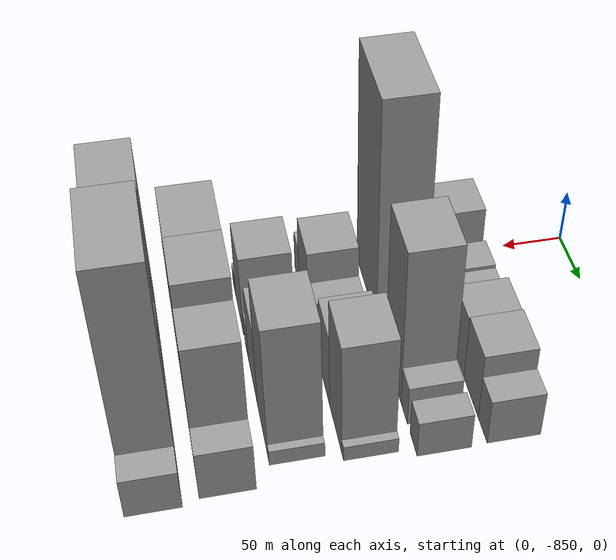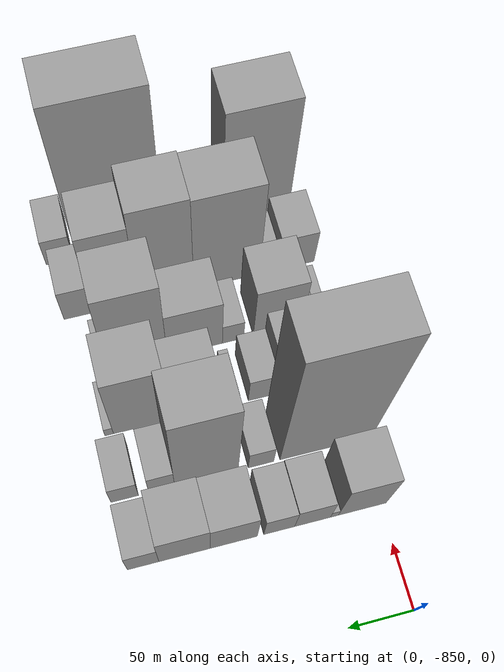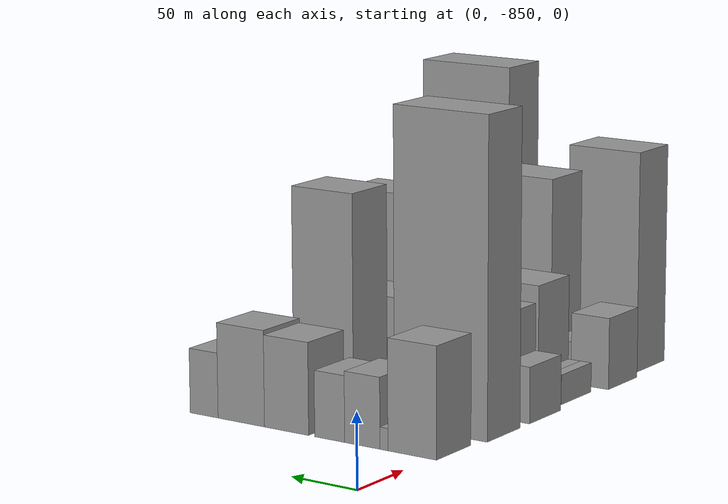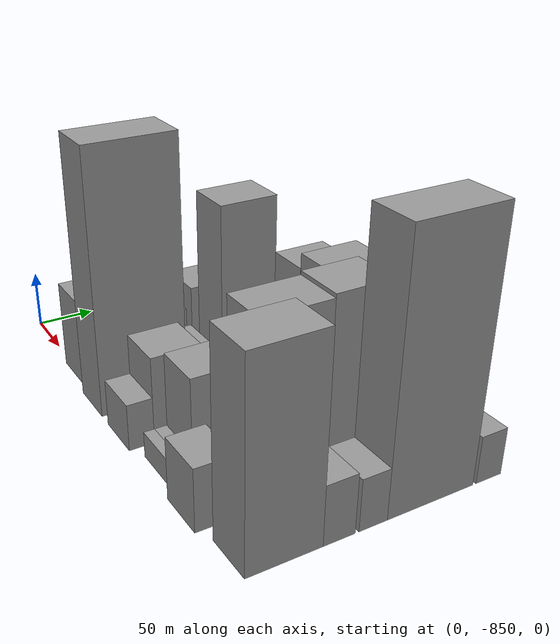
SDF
<sdf version="1.6">
 <world name="default">
  <model name="building_1">
   <static>1</static>
   <pose>100.0000 -836.1101 0 0.000000 0.000000 0.000000</pose>
   <link name="link">
    <pose>0 0 37.50 0 0 0</pose>
    <collision name="collision"><geometry><box><size>40.0000 37.7797 75.0000</size></box></geometry></collision>
    <visual name="visual">
     <cast_shadows>0</cast_shadows>
     <geometry><box><size>40.0000 37.7797 75.0000</size></box></geometry>
     <material>
      <script>
       <uri>model://grey_wall/materials/scripts</uri>
       <uri>model://grey_wall/materials/textures</uri>
       <name>vrc/grey_wall</name>
      </script>
     </material>
    </visual>
   </link>
  </model>
  <model name="building_2">
   <static>1</static>
   <pose>100.0000 -814.1010 0 0.000000 0.000000 0.000000</pose>
   <link name="link">
    <pose>0 0 7.50 0 0 0</pose>
    <collision name="collision"><geometry><box><size>40.0000 6.2386 15.0000</size></box></geometry></collision>
    <visual name="visual">
     <cast_shadows>0</cast_shadows>
     <geometry><box><size>40.0000 6.2386 15.0000</size></box></geometry>
     <material>
      <script>
       <uri>model://grey_wall/materials/scripts</uri>
       <uri>model://grey_wall/materials/textures</uri>
       <name>vrc/grey_wall</name>
      </script>
     </material>
    </visual>
   </link>
  </model>
  <model name="building_3">
   <static>1</static>
   <pose>100.0000 -797.0006 0 0.000000 0.000000 0.000000</pose>
   <link name="link">
    <pose>0 0 24.00 0 0 0</pose>
    <collision name="collision"><geometry><box><size>40.0000 27.9622 48.0000</size></box></geometry></collision>
    <visual name="visual">
     <cast_shadows>0</cast_shadows>
     <geometry><box><size>40.0000 27.9622 48.0000</size></box></geometry>
     <material>
      <script>
       <uri>model://grey_wall/materials/scripts</uri>
       <uri>model://grey_wall/materials/textures</uri>
       <name>vrc/grey_wall</name>
      </script>
     </material>
    </visual>
   </link>
  </model>
  <model name="building_4">
   <static>1</static>
   <pose>100.0000 -770.9976 0 0.000000 0.000000 0.000000</pose>
   <link name="link">
    <pose>0 0 22.50 0 0 0</pose>
    <collision name="collision"><geometry><box><size>40.0000 24.0437 45.0000</size></box></geometry></collision>
    <visual name="visual">
     <cast_shadows>0</cast_shadows>
     <geometry><box><size>40.0000 24.0437 45.0000</size></box></geometry>
     <material>
      <script>
       <uri>model://grey_wall/materials/scripts</uri>
       <uri>model://grey_wall/materials/textures</uri>
       <name>vrc/grey_wall</name>
      </script>
     </material>
    </visual>
   </link>
  </model>
  <model name="building_5">
   <static>1</static>
   <pose>100.0000 -735.8381 0 0.000000 0.000000 0.000000</pose>
   <link name="link">
    <pose>0 0 31.50 0 0 0</pose>
    <collision name="collision"><geometry><box><size>40.0000 36.2753 63.0000</size></box></geometry></collision>
    <visual name="visual">
     <cast_shadows>0</cast_shadows>
     <geometry><box><size>40.0000 36.2753 63.0000</size></box></geometry>
     <material>
      <script>
       <uri>model://grey_wall/materials/scripts</uri>
       <uri>model://grey_wall/materials/textures</uri>
       <name>vrc/grey_wall</name>
      </script>
     </material>
    </visual>
   </link>
  </model>
  <model name="building_6">
   <static>1</static>
   <pose>100.0000 -698.1796 0 0.000000 0.000000 0.000000</pose>
   <link name="link">
    <pose>0 0 33.00 0 0 0</pose>
    <collision name="collision"><geometry><box><size>40.0000 39.0418 66.0000</size></box></geometry></collision>
    <visual name="visual">
     <cast_shadows>0</cast_shadows>
     <geometry><box><size>40.0000 39.0418 66.0000</size></box></geometry>
     <material>
      <script>
       <uri>model://grey_wall/materials/scripts</uri>
       <uri>model://grey_wall/materials/textures</uri>
       <name>vrc/grey_wall</name>
      </script>
     </material>
    </visual>
   </link>
  </model>
  <model name="building_7">
   <static>1</static>
   <pose>100.0000 -666.7290 0 0.000000 0.000000 0.000000</pose>
   <link name="link">
    <pose>0 0 22.50 0 0 0</pose>
    <collision name="collision"><geometry><box><size>40.0000 23.8593 45.0000</size></box></geometry></collision>
    <visual name="visual">
     <cast_shadows>0</cast_shadows>
     <geometry><box><size>40.0000 23.8593 45.0000</size></box></geometry>
     <material>
      <script>
       <uri>model://grey_wall/materials/scripts</uri>
       <uri>model://grey_wall/materials/textures</uri>
       <name>vrc/grey_wall</name>
      </script>
     </material>
    </visual>
   </link>
  </model>
  <model name="building_50">
   <static>1</static>
   <pose>152.0000 -823.1625 0 0.000000 0.000000 0.000000</pose>
   <link name="link">
    <pose>0 0 108.00 0 0 0</pose>
    <collision name="collision"><geometry><box><size>40.0000 73.6750 216.0000</size></box></geometry></collision>
    <visual name="visual">
     <cast_shadows>0</cast_shadows>
     <geometry><box><size>40.0000 73.6750 216.0000</size></box></geometry>
     <material>
      <script>
       <uri>model://grey_wall/materials/scripts</uri>
       <uri>model://grey_wall/materials/textures</uri>
       <name>vrc/grey_wall</name>
      </script>
     </material>
    </visual>
   </link>
  </model>
  <model name="building_51">
   <static>1</static>
   <pose>152.0000 -771.1802 0 0.000000 0.000000 0.000000</pose>
   <link name="link">
    <pose>0 0 18.00 0 0 0</pose>
    <collision name="collision"><geometry><box><size>40.0000 20.2896 36.0000</size></box></geometry></collision>
    <visual name="visual">
     <cast_shadows>0</cast_shadows>
     <geometry><box><size>40.0000 20.2896 36.0000</size></box></geometry>
     <material>
      <script>
       <uri>model://grey_wall/materials/scripts</uri>
       <uri>model://grey_wall/materials/textures</uri>
       <name>vrc/grey_wall</name>
      </script>
     </material>
    </visual>
   </link>
  </model>
  <model name="building_52">
   <static>1</static>
   <pose>152.0000 -728.1280 0 0.000000 0.000000 0.000000</pose>
   <link name="link">
    <pose>0 0 76.50 0 0 0</pose>
    <collision name="collision"><geometry><box><size>40.0000 49.8148 153.0000</size></box></geometry></collision>
    <visual name="visual">
     <cast_shadows>0</cast_shadows>
     <geometry><box><size>40.0000 49.8148 153.0000</size></box></geometry>
     <material>
      <script>
       <uri>model://grey_wall/materials/scripts</uri>
       <uri>model://grey_wall/materials/textures</uri>
       <name>vrc/grey_wall</name>
      </script>
     </material>
    </visual>
   </link>
  </model>
  <model name="building_53">
   <static>1</static>
   <pose>152.0000 -693.1054 0 0.000000 0.000000 0.000000</pose>
   <link name="link">
    <pose>0 0 19.50 0 0 0</pose>
    <collision name="collision"><geometry><box><size>40.0000 20.2304 39.0000</size></box></geometry></collision>
    <visual name="visual">
     <cast_shadows>0</cast_shadows>
     <geometry><box><size>40.0000 20.2304 39.0000</size></box></geometry>
     <material>
      <script>
       <uri>model://grey_wall/materials/scripts</uri>
       <uri>model://grey_wall/materials/textures</uri>
       <name>vrc/grey_wall</name>
      </script>
     </material>
    </visual>
   </link>
  </model>
  <model name="building_54">
   <static>1</static>
   <pose>152.0000 -664.2839 0 0.000000 0.000000 0.000000</pose>
   <link name="link">
    <pose>0 0 18.00 0 0 0</pose>
    <collision name="collision"><geometry><box><size>40.0000 21.4125 36.0000</size></box></geometry></collision>
    <visual name="visual">
     <cast_shadows>0</cast_shadows>
     <geometry><box><size>40.0000 21.4125 36.0000</size></box></geometry>
     <material>
      <script>
       <uri>model://grey_wall/materials/scripts</uri>
       <uri>model://grey_wall/materials/textures</uri>
       <name>vrc/grey_wall</name>
      </script>
     </material>
    </visual>
   </link>
  </model>
  <model name="building_102">
   <static>1</static>
   <pose>204.0000 -849.7904 0 0.000000 0.000000 0.000000</pose>
   <link name="link">
    <pose>0 0 19.50 0 0 0</pose>
    <collision name="collision"><geometry><box><size>40.0000 20.4192 39.0000</size></box></geometry></collision>
    <visual name="visual">
     <cast_shadows>0</cast_shadows>
     <geometry><box><size>40.0000 20.4192 39.0000</size></box></geometry>
     <material>
      <script>
       <uri>model://grey_wall/materials/scripts</uri>
       <uri>model://grey_wall/materials/textures</uri>
       <name>vrc/grey_wall</name>
      </script>
     </material>
    </visual>
   </link>
  </model>
  <model name="building_103">
   <static>1</static>
   <pose>204.0000 -818.8654 0 0.000000 0.000000 0.000000</pose>
   <link name="link">
    <pose>0 0 36.00 0 0 0</pose>
    <collision name="collision"><geometry><box><size>40.0000 41.4309 72.0000</size></box></geometry></collision>
    <visual name="visual">
     <cast_shadows>0</cast_shadows>
     <geometry><box><size>40.0000 41.4309 72.0000</size></box></geometry>
     <material>
      <script>
       <uri>model://grey_wall/materials/scripts</uri>
       <uri>model://grey_wall/materials/textures</uri>
       <name>vrc/grey_wall</name>
      </script>
     </material>
    </visual>
   </link>
  </model>
  <model name="building_104">
   <static>1</static>
   <pose>204.0000 -786.6893 0 0.000000 0.000000 0.000000</pose>
   <link name="link">
    <pose>0 0 21.00 0 0 0</pose>
    <collision name="collision"><geometry><box><size>40.0000 22.9213 42.0000</size></box></geometry></collision>
    <visual name="visual">
     <cast_shadows>0</cast_shadows>
     <geometry><box><size>40.0000 22.9213 42.0000</size></box></geometry>
     <material>
      <script>
       <uri>model://grey_wall/materials/scripts</uri>
       <uri>model://grey_wall/materials/textures</uri>
       <name>vrc/grey_wall</name>
      </script>
     </material>
    </visual>
   </link>
  </model>
  <model name="building_105">
   <static>1</static>
   <pose>204.0000 -764.2685 0 0.000000 0.000000 0.000000</pose>
   <link name="link">
    <pose>0 0 9.00 0 0 0</pose>
    <collision name="collision"><geometry><box><size>40.0000 7.9204 18.0000</size></box></geometry></collision>
    <visual name="visual">
     <cast_shadows>0</cast_shadows>
     <geometry><box><size>40.0000 7.9204 18.0000</size></box></geometry>
     <material>
      <script>
       <uri>model://grey_wall/materials/scripts</uri>
       <uri>model://grey_wall/materials/textures</uri>
       <name>vrc/grey_wall</name>
      </script>
     </material>
    </visual>
   </link>
  </model>
  <model name="building_106">
   <static>1</static>
   <pose>204.0000 -731.7909 0 0.000000 0.000000 0.000000</pose>
   <link name="link">
    <pose>0 0 36.00 0 0 0</pose>
    <collision name="collision"><geometry><box><size>40.0000 41.0349 72.0000</size></box></geometry></collision>
    <visual name="visual">
     <cast_shadows>0</cast_shadows>
     <geometry><box><size>40.0000 41.0349 72.0000</size></box></geometry>
     <material>
      <script>
       <uri>model://grey_wall/materials/scripts</uri>
       <uri>model://grey_wall/materials/textures</uri>
       <name>vrc/grey_wall</name>
      </script>
     </material>
    </visual>
   </link>
  </model>
  <model name="building_107">
   <static>1</static>
   <pose>204.0000 -689.0931 0 0.000000 0.000000 0.000000</pose>
   <link name="link">
    <pose>0 0 55.50 0 0 0</pose>
    <collision name="collision"><geometry><box><size>40.0000 44.3606 111.0000</size></box></geometry></collision>
    <visual name="visual">
     <cast_shadows>0</cast_shadows>
     <geometry><box><size>40.0000 44.3606 111.0000</size></box></geometry>
     <material>
      <script>
       <uri>model://grey_wall/materials/scripts</uri>
       <uri>model://grey_wall/materials/textures</uri>
       <name>vrc/grey_wall</name>
      </script>
     </material>
    </visual>
   </link>
  </model>
  <model name="building_108">
   <static>1</static>
   <pose>204.0000 -663.5158 0 0.000000 0.000000 0.000000</pose>
   <link name="link">
    <pose>0 0 7.50 0 0 0</pose>
    <collision name="collision"><geometry><box><size>40.0000 6.7940 15.0000</size></box></geometry></collision>
    <visual name="visual">
     <cast_shadows>0</cast_shadows>
     <geometry><box><size>40.0000 6.7940 15.0000</size></box></geometry>
     <material>
      <script>
       <uri>model://grey_wall/materials/scripts</uri>
       <uri>model://grey_wall/materials/textures</uri>
       <name>vrc/grey_wall</name>
      </script>
     </material>
    </visual>
   </link>
  </model>
  <model name="building_154">
   <static>1</static>
   <pose>256.0000 -848.6056 0 0.000000 0.000000 0.000000</pose>
   <link name="link">
    <pose>0 0 10.50 0 0 0</pose>
    <collision name="collision"><geometry><box><size>40.0000 8.7887 21.0000</size></box></geometry></collision>
    <visual name="visual">
     <cast_shadows>0</cast_shadows>
     <geometry><box><size>40.0000 8.7887 21.0000</size></box></geometry>
     <material>
      <script>
       <uri>model://grey_wall/materials/scripts</uri>
       <uri>model://grey_wall/materials/textures</uri>
       <name>vrc/grey_wall</name>
      </script>
     </material>
    </visual>
   </link>
  </model>
  <model name="building_155">
   <static>1</static>
   <pose>256.0000 -839.3177 0 0.000000 0.000000 0.000000</pose>
   <link name="link">
    <pose>0 0 10.50 0 0 0</pose>
    <collision name="collision"><geometry><box><size>40.0000 9.7872 21.0000</size></box></geometry></collision>
    <visual name="visual">
     <cast_shadows>0</cast_shadows>
     <geometry><box><size>40.0000 9.7872 21.0000</size></box></geometry>
     <material>
      <script>
       <uri>model://grey_wall/materials/scripts</uri>
       <uri>model://grey_wall/materials/textures</uri>
       <name>vrc/grey_wall</name>
      </script>
     </material>
    </visual>
   </link>
  </model>
  <model name="building_156">
   <static>1</static>
   <pose>256.0000 -813.9608 0 0.000000 0.000000 0.000000</pose>
   <link name="link">
    <pose>0 0 40.50 0 0 0</pose>
    <collision name="collision"><geometry><box><size>40.0000 40.9265 81.0000</size></box></geometry></collision>
    <visual name="visual">
     <cast_shadows>0</cast_shadows>
     <geometry><box><size>40.0000 40.9265 81.0000</size></box></geometry>
     <material>
      <script>
       <uri>model://grey_wall/materials/scripts</uri>
       <uri>model://grey_wall/materials/textures</uri>
       <name>vrc/grey_wall</name>
      </script>
     </material>
    </visual>
   </link>
  </model>
  <model name="building_157">
   <static>1</static>
   <pose>256.0000 -776.6202 0 0.000000 0.000000 0.000000</pose>
   <link name="link">
    <pose>0 0 16.50 0 0 0</pose>
    <collision name="collision"><geometry><box><size>40.0000 17.7547 33.0000</size></box></geometry></collision>
    <visual name="visual">
     <cast_shadows>0</cast_shadows>
     <geometry><box><size>40.0000 17.7547 33.0000</size></box></geometry>
     <material>
      <script>
       <uri>model://grey_wall/materials/scripts</uri>
       <uri>model://grey_wall/materials/textures</uri>
       <name>vrc/grey_wall</name>
      </script>
     </material>
    </visual>
   </link>
  </model>
  <model name="building_158">
   <static>1</static>
   <pose>256.0000 -744.9824 0 0.000000 0.000000 0.000000</pose>
   <link name="link">
    <pose>0 0 39.00 0 0 0</pose>
    <collision name="collision"><geometry><box><size>40.0000 45.5210 78.0000</size></box></geometry></collision>
    <visual name="visual">
     <cast_shadows>0</cast_shadows>
     <geometry><box><size>40.0000 45.5210 78.0000</size></box></geometry>
     <material>
      <script>
       <uri>model://grey_wall/materials/scripts</uri>
       <uri>model://grey_wall/materials/textures</uri>
       <name>vrc/grey_wall</name>
      </script>
     </material>
    </visual>
   </link>
  </model>
  <model name="building_159">
   <static>1</static>
   <pose>256.0000 -697.8295 0 0.000000 0.000000 0.000000</pose>
   <link name="link">
    <pose>0 0 66.00 0 0 0</pose>
    <collision name="collision"><geometry><box><size>40.0000 48.7846 132.0000</size></box></geometry></collision>
    <visual name="visual">
     <cast_shadows>0</cast_shadows>
     <geometry><box><size>40.0000 48.7846 132.0000</size></box></geometry>
     <material>
      <script>
       <uri>model://grey_wall/materials/scripts</uri>
       <uri>model://grey_wall/materials/textures</uri>
       <name>vrc/grey_wall</name>
      </script>
     </material>
    </visual>
   </link>
  </model>
  <model name="building_160">
   <static>1</static>
   <pose>256.0000 -670.1234 0 0.000000 0.000000 0.000000</pose>
   <link name="link">
    <pose>0 0 7.50 0 0 0</pose>
    <collision name="collision"><geometry><box><size>40.0000 6.6277 15.0000</size></box></geometry></collision>
    <visual name="visual">
     <cast_shadows>0</cast_shadows>
     <geometry><box><size>40.0000 6.6277 15.0000</size></box></geometry>
     <material>
      <script>
       <uri>model://grey_wall/materials/scripts</uri>
       <uri>model://grey_wall/materials/textures</uri>
       <name>vrc/grey_wall</name>
      </script>
     </material>
    </visual>
   </link>
  </model>
  <model name="building_210">
   <static>1</static>
   <pose>308.0000 -844.7728 0 0.000000 0.000000 0.000000</pose>
   <link name="link">
    <pose>0 0 25.50 0 0 0</pose>
    <collision name="collision"><geometry><box><size>40.0000 30.4543 51.0000</size></box></geometry></collision>
    <visual name="visual">
     <cast_shadows>0</cast_shadows>
     <geometry><box><size>40.0000 30.4543 51.0000</size></box></geometry>
     <material>
      <script>
       <uri>model://grey_wall/materials/scripts</uri>
       <uri>model://grey_wall/materials/textures</uri>
       <name>vrc/grey_wall</name>
      </script>
     </material>
    </visual>
   </link>
  </model>
  <model name="building_211">
   <static>1</static>
   <pose>308.0000 -821.2260 0 0.000000 0.000000 0.000000</pose>
   <link name="link">
    <pose>0 0 15.00 0 0 0</pose>
    <collision name="collision"><geometry><box><size>40.0000 16.6393 30.0000</size></box></geometry></collision>
    <visual name="visual">
     <cast_shadows>0</cast_shadows>
     <geometry><box><size>40.0000 16.6393 30.0000</size></box></geometry>
     <material>
      <script>
       <uri>model://grey_wall/materials/scripts</uri>
       <uri>model://grey_wall/materials/textures</uri>
       <name>vrc/grey_wall</name>
      </script>
     </material>
    </visual>
   </link>
  </model>
  <model name="building_212">
   <static>1</static>
   <pose>308.0000 -784.9820 0 0.000000 0.000000 0.000000</pose>
   <link name="link">
    <pose>0 0 72.00 0 0 0</pose>
    <collision name="collision"><geometry><box><size>40.0000 55.8489 144.0000</size></box></geometry></collision>
    <visual name="visual">
     <cast_shadows>0</cast_shadows>
     <geometry><box><size>40.0000 55.8489 144.0000</size></box></geometry>
     <material>
      <script>
       <uri>model://grey_wall/materials/scripts</uri>
       <uri>model://grey_wall/materials/textures</uri>
       <name>vrc/grey_wall</name>
      </script>
     </material>
    </visual>
   </link>
  </model>
  <model name="building_213">
   <static>1</static>
   <pose>308.0000 -733.8337 0 0.000000 0.000000 0.000000</pose>
   <link name="link">
    <pose>0 0 73.50 0 0 0</pose>
    <collision name="collision"><geometry><box><size>40.0000 46.4477 147.0000</size></box></geometry></collision>
    <visual name="visual">
     <cast_shadows>0</cast_shadows>
     <geometry><box><size>40.0000 46.4477 147.0000</size></box></geometry>
     <material>
      <script>
       <uri>model://grey_wall/materials/scripts</uri>
       <uri>model://grey_wall/materials/textures</uri>
       <name>vrc/grey_wall</name>
      </script>
     </material>
    </visual>
   </link>
  </model>
  <model name="building_214">
   <static>1</static>
   <pose>308.0000 -691.5053 0 0.000000 0.000000 0.000000</pose>
   <link name="link">
    <pose>0 0 63.00 0 0 0</pose>
    <collision name="collision"><geometry><box><size>40.0000 38.2090 126.0000</size></box></geometry></collision>
    <visual name="visual">
     <cast_shadows>0</cast_shadows>
     <geometry><box><size>40.0000 38.2090 126.0000</size></box></geometry>
     <material>
      <script>
       <uri>model://grey_wall/materials/scripts</uri>
       <uri>model://grey_wall/materials/textures</uri>
       <name>vrc/grey_wall</name>
      </script>
     </material>
    </visual>
   </link>
  </model>
  <model name="building_215">
   <static>1</static>
   <pose>308.0000 -660.3969 0 0.000000 0.000000 0.000000</pose>
   <link name="link">
    <pose>0 0 24.00 0 0 0</pose>
    <collision name="collision"><geometry><box><size>40.0000 24.0078 48.0000</size></box></geometry></collision>
    <visual name="visual">
     <cast_shadows>0</cast_shadows>
     <geometry><box><size>40.0000 24.0078 48.0000</size></box></geometry>
     <material>
      <script>
       <uri>model://grey_wall/materials/scripts</uri>
       <uri>model://grey_wall/materials/textures</uri>
       <name>vrc/grey_wall</name>
      </script>
     </material>
    </visual>
   </link>
  </model>
  <model name="building_258">
   <static>1</static>
   <pose>360.0000 -824.1662 0 0.000000 0.000000 0.000000</pose>
   <link name="link">
    <pose>0 0 79.50 0 0 0</pose>
    <collision name="collision"><geometry><box><size>40.0000 57.6676 159.0000</size></box></geometry></collision>
    <visual name="visual">
     <cast_shadows>0</cast_shadows>
     <geometry><box><size>40.0000 57.6676 159.0000</size></box></geometry>
     <material>
      <script>
       <uri>model://grey_wall/materials/scripts</uri>
       <uri>model://grey_wall/materials/textures</uri>
       <name>vrc/grey_wall</name>
      </script>
     </material>
    </visual>
   </link>
  </model>
  <model name="building_259">
   <static>1</static>
   <pose>360.0000 -782.7710 0 0.000000 0.000000 0.000000</pose>
   <link name="link">
    <pose>0 0 24.00 0 0 0</pose>
    <collision name="collision"><geometry><box><size>40.0000 25.1228 48.0000</size></box></geometry></collision>
    <visual name="visual">
     <cast_shadows>0</cast_shadows>
     <geometry><box><size>40.0000 25.1228 48.0000</size></box></geometry>
     <material>
      <script>
       <uri>model://grey_wall/materials/scripts</uri>
       <uri>model://grey_wall/materials/textures</uri>
       <name>vrc/grey_wall</name>
      </script>
     </material>
    </visual>
   </link>
  </model>
  <model name="building_260">
   <static>1</static>
   <pose>360.0000 -755.7266 0 0.000000 0.000000 0.000000</pose>
   <link name="link">
    <pose>0 0 21.00 0 0 0</pose>
    <collision name="collision"><geometry><box><size>40.0000 22.9660 42.0000</size></box></geometry></collision>
    <visual name="visual">
     <cast_shadows>0</cast_shadows>
     <geometry><box><size>40.0000 22.9660 42.0000</size></box></geometry>
     <material>
      <script>
       <uri>model://grey_wall/materials/scripts</uri>
       <uri>model://grey_wall/materials/textures</uri>
       <name>vrc/grey_wall</name>
      </script>
     </material>
    </visual>
   </link>
  </model>
  <model name="building_261">
   <static>1</static>
   <pose>360.0000 -706.9498 0 0.000000 0.000000 0.000000</pose>
   <link name="link">
    <pose>0 0 105.00 0 0 0</pose>
    <collision name="collision"><geometry><box><size>40.0000 74.5876 210.0000</size></box></geometry></collision>
    <visual name="visual">
     <cast_shadows>0</cast_shadows>
     <geometry><box><size>40.0000 74.5876 210.0000</size></box></geometry>
     <material>
      <script>
       <uri>model://grey_wall/materials/scripts</uri>
       <uri>model://grey_wall/materials/textures</uri>
       <name>vrc/grey_wall</name>
      </script>
     </material>
    </visual>
   </link>
  </model>
  <model name="building_262">
   <static>1</static>
   <pose>360.0000 -655.1511 0 0.000000 0.000000 0.000000</pose>
   <link name="link">
    <pose>0 0 19.50 0 0 0</pose>
    <collision name="collision"><geometry><box><size>40.0000 23.0097 39.0000</size></box></geometry></collision>
    <visual name="visual">
     <cast_shadows>0</cast_shadows>
     <geometry><box><size>40.0000 23.0097 39.0000</size></box></geometry>
     <material>
      <script>
       <uri>model://grey_wall/materials/scripts</uri>
       <uri>model://grey_wall/materials/textures</uri>
       <name>vrc/grey_wall</name>
      </script>
     </material>
    </visual>
   </link>
  </model>
 </world>
</sdf>
